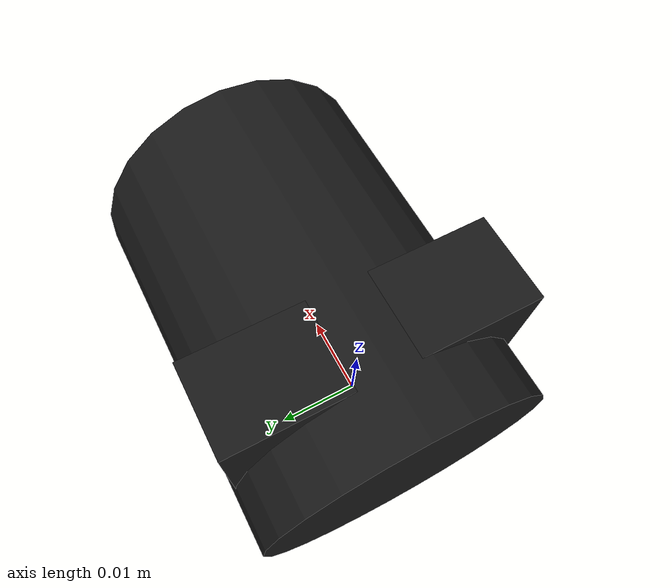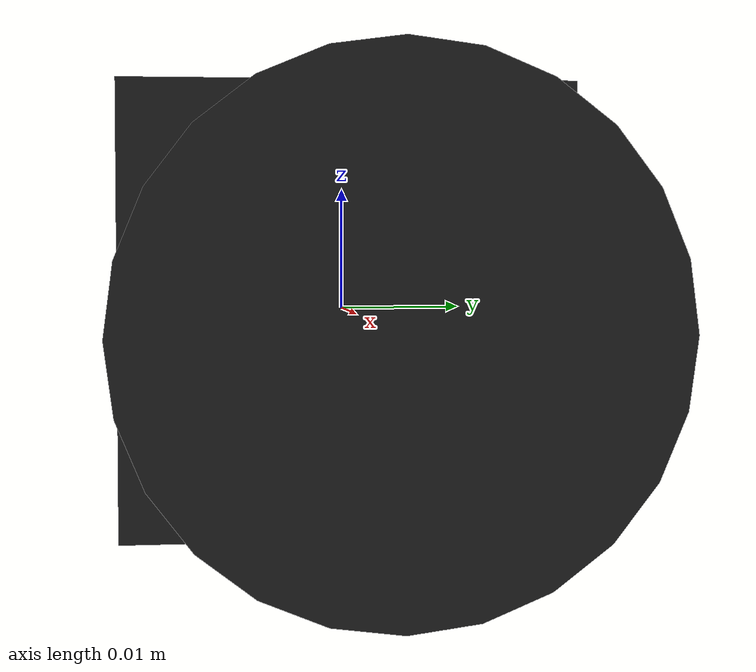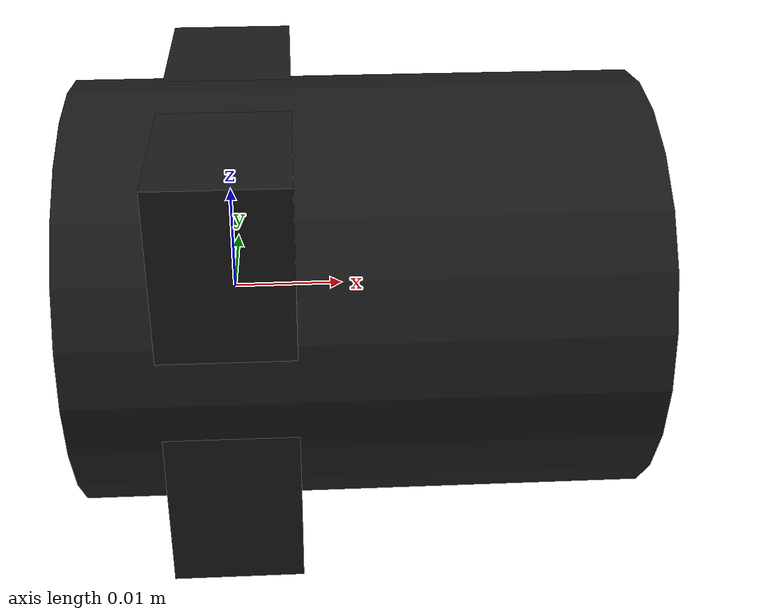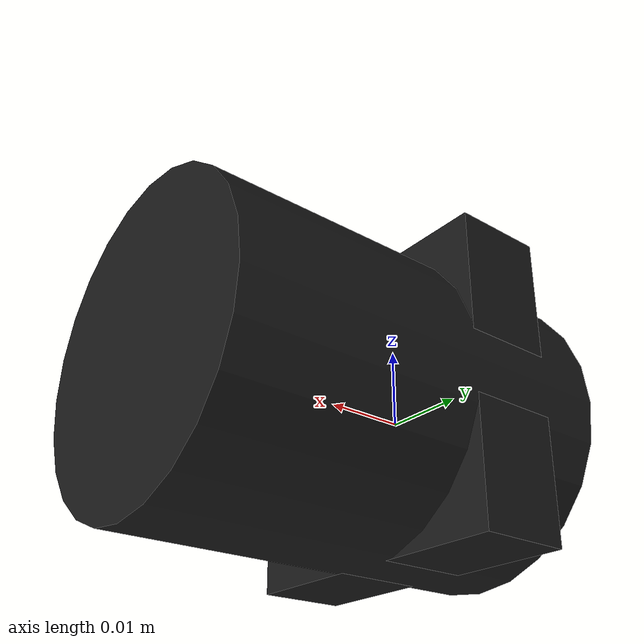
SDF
<?xml version="1.0"?>
<sdf version="1.9">
  <model name="pi_cam_16mm">
    <static>false</static>
    <link name="cam_link">
      <pose>0 0 0 0 0 0</pose>
      <inertial>
        <mass>0.03</mass>
        <inertia>
          <ixx>1e-05</ixx>
          <iyy>1e-05</iyy>
          <izz>1e-05</izz>
          <ixy>0.0</ixy>
          <ixz>0.0</ixz>
          <iyz>0.0</iyz>
        </inertia>
      </inertial>

      <visual name="cam_visual">
        <pose>0 0 0 0 0 0</pose>
        <geometry>
          <box>
            <size>0.01143 0.038 0.038</size>
          </box>
        </geometry>
        <material>
          <ambient>0.1 0.1 0.1 1</ambient>
          <diffuse>0.1 0.1 0.1 1</diffuse>
        </material>
      </visual>
      <collision name="cam_collision">
        <pose>0 0 0 0 0 0</pose>
        <geometry>
          <box>
            <size>0.01143 0.038 0.038</size>
          </box>
        </geometry>
      </collision>

      <visual name="lens_visual">
        <pose>0.01143 0 0 0 1.5708 0</pose>
        <geometry>
          <cylinder>
            <radius>0.0195</radius>
            <length>0.05</length>
          </cylinder>
        </geometry>
        <material>
          <ambient>0.1 0.1 0.1 1</ambient>
          <diffuse>0.1 0.1 0.1 1</diffuse>
        </material>
      </visual>
      <collision name="lens_collision">
        <pose>0.01143 0 0 0 1.5708 0</pose>
        <geometry>
          <cylinder>
            <radius>0.0195</radius>
            <lenght>0.05</lenght>
          </cylinder>
        </geometry>
      </collision>

      <sensor name="piCam_16mm" type="camera">
        <pose>0.062 0 0 0 0 0</pose>
        <always_on>true</always_on>
        <update_rate>30</update_rate>
        <visualize>false</visualize>
        <topic>/camera/image_raw</topic>

        <camera name="piCam_16mm_sensor">
          <camera_info_topic>/camera/camera_info</camera_info_topic>
          <optical_frame_id>camera_optical_frame</optical_frame_id>
          <horizontal_fov>0.388</horizontal_fov>
          <image>
            <width>1920</width>
            <height>1080</height>
            <format>R8G8B8</format>
          </image>
          <clip>
            <near>0.2</near>
            <far>300.0</far>
          </clip>
          <noise>
            <type>gaussian</type>
            <mean>0.0</mean>
            <stddev>0.007</stddev>
          </noise>
        </camera>
      </sensor>
    </link>
  </model>
</sdf>
